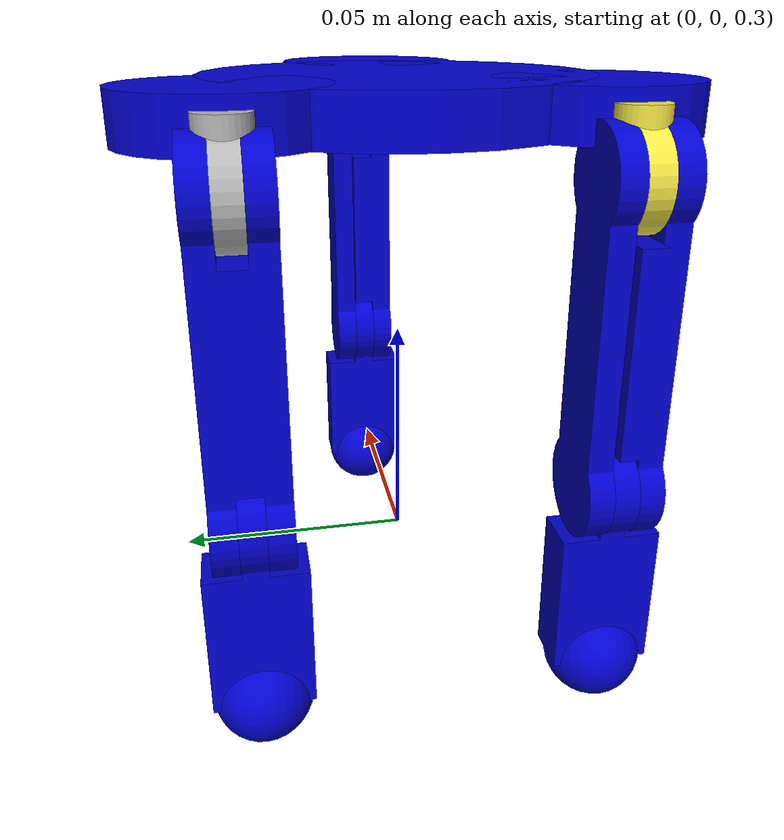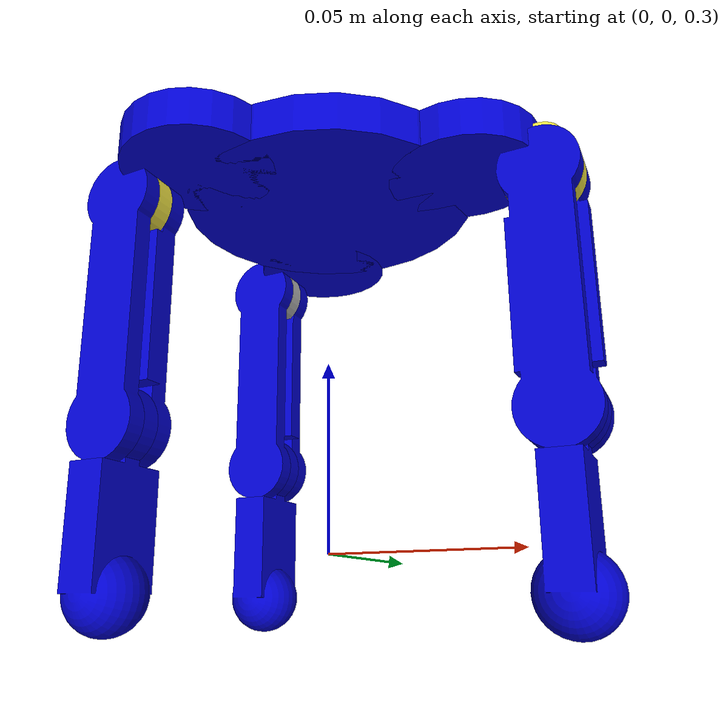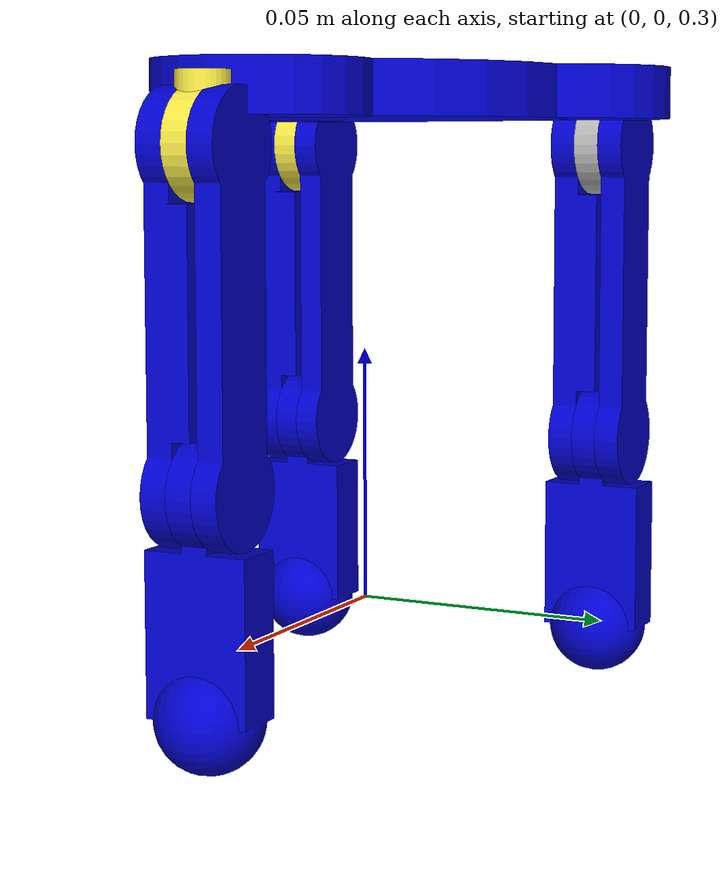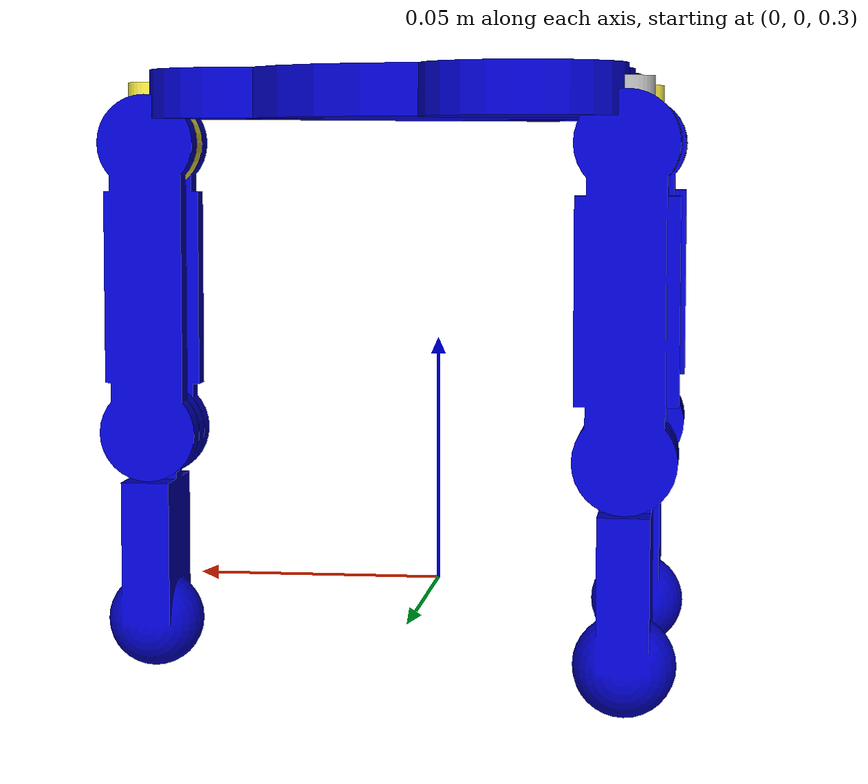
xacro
<?xml version="1.0"?>
<robot name="trimod" xmlns:xacro="http://www.ros.org/wiki/xacro">

  <xacro:include filename="$(find trimod_gripper)/gripper/trimod.urdf.xacro"/>

  <link name="world" />

  <trimod name="trimod" parent="world">
    <origin rpy="${M_PI} 0 0" xyz="0 0 0.4"/>
  </trimod>

</robot>

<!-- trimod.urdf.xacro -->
<robot xmlns:xacro="http://www.ros.org/wiki/xacro">

  <xacro:include filename="$(find trimod_gripper)/gripper/utils.urdf.xacro"/>
  <xacro:include filename="$(find trimod_gripper)/gripper/finger.urdf.xacro"/>

  <xacro:property name="gripper_r" value="${0.02}"/>
  <xacro:property name="gripper_d" value="${gripper_r*1.4641}"/>
  <xacro:property name="gripper_rds" value="${gripper_r + gripper_d*0.5}"/>
  <xacro:property name="gripper_a" value="${0.5774*(gripper_d*0.5+gripper_r)}"/>
  <xacro:property name="gripper_b" value="${(gripper_d*0.5+gripper_r)/0.8660}"/>

  <macro name="trimod" params="name parent *origin">

    <link name="${name}_base">
      <visual>
        <origin rpy="0 0 0" xyz="0 0 0"/>
        <geometry>
          <cylinder length="0.01" radius="0.04"/>
        </geometry>
        <material name="blue">
          <color rgba="0 0 .8 1"/>
        </material>
      </visual>
      <collision>
        <origin rpy="0 0 0" xyz="0 0 0"/>
        <geometry>
          <cylinder length="0.01" radius="0.04"/>
        </geometry>
      </collision>
      <inertial>
        <origin rpy="${M_PI/2} 0 0" xyz="0 0 0"/>
        <mass value="1000000"/>
        <cylinder_inertia length="0.01" mass="1000000" radius="0.04"/>
      </inertial>
    </link>

    <joint name="${name}_joint_base" type="fixed">
      <parent link="${parent}"/>
      <child link="${name}_base"/>
      <insert_block name="origin"/>
    </joint>

    <finger name="${name}_finger_left" parent="${name}_base">
      <origin rpy="0 0 ${M_PI}" xyz="${-gripper_a} ${gripper_rds} 0.0"/>
    </finger>

    <finger name="${name}_finger_right" parent="${name}_base">
      <origin rpy="0 0 ${M_PI}" xyz="${-gripper_a} ${-gripper_rds} 0.0"/>
    </finger>

    <finger name="${name}_finger_center" parent="${name}_base">
      <origin rpy="0 0 0" xyz="${gripper_b} 0 0.0"/>
    </finger>

  </macro>

  <gazebo>
    <plugin filename="libgazebo_ros_control.so" name="gazebo_ros_control">
      <robotNamespace>/trimod</robotNamespace>
    </plugin>
  </gazebo>

</robot>

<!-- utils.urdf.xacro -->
<robot  xmlns:xacro="http://www.ros.org/wiki/xacro">

  <xacro:property name="M_PI" value="3.1415926535897931"/>

  <xacro:macro name="cuboid_inertia" params="width height length mass">
    <inertia ixx="${mass * (height * height + length * length) / 12}"
             iyy="${mass * (width * width + length * length) / 12}"
             izz="${mass * (width * width + height * height) / 12}"
             ixy="0" iyz="0" ixz="0"/>
  </xacro:macro>

  <!-- length is along the y-axis! -->
  <xacro:macro name="cylinder_inertia" params="radius length mass">
    <inertia ixx="${mass * (3 * radius * radius + length * length) / 12}"
             iyy="${mass * radius* radius / 2}"
             izz="${mass * (3 * radius * radius + length * length) / 12}"
             ixy="0" iyz="0" ixz="0"/>
  </xacro:macro>

  <xacro:macro name="box_inertia" params="m x:=${x} y z">
    <inertia ixx="${m*(y*y+z*z)/12}" ixy="0" ixz="0" iyy="${m*(x*x+z*z)/12}" iyz="0" izz="${m*(x*x+z*z)/12}"/>
  </xacro:macro>

  <xacro:macro name="collision_sphere" params="radius xyz rpy">
    <collision>
      <origin rpy="${rpy}" xyz="${xyz}"/>
      <geometry>
        <sphere radius="${radius}"/>
      </geometry>
      <contact_coefficients mu="100000000.0" mu2="100000000.0" kp="100000.0" kd="100000.0" />
    </collision>
  </xacro:macro>

  <material name="pino">
     <color rgba="${158/255} ${22/255} ${22/255} 1.0"/>
  </material>

  <material name="gred">
     <color rgba="${0/255} ${175/255} ${175/255} 1.0"/>
  </material>
</robot>

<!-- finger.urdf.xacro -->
<robot xmlns:xacro="http://www.ros.org/wiki/xacro">

  <xacro:property name="scale" value="0.1"/>
  <xacro:property name="fingerDepth" value="0.2"/>
  <xacro:property name="link0r" value="0.2"/>
  <xacro:property name="link0h" value="0.1"/>
  <xacro:property name="link1a" value="0.6"/>
  <xacro:property name="link2a" value="0.4"/>
  <xacro:property name="effort" value="10"/>
  <xacro:property name="interface" value="PositionJointInterface"/>

  <macro name="finger" params="name parent *origin">

    <link name="${name}_base">
      <visual>
        <origin rpy="0 0 0" xyz="0 0 0"/>
        <geometry>
          <cylinder length="0.01" radius="0.02"/>
        </geometry>
        <material name="blue">
          <color rgba="0 0 .8 1"/>
        </material>
      </visual>
      <collision>
        <origin rpy="0 0 0" xyz="0 0 0"/>
        <geometry>
          <cylinder length="0.01" radius="0.04"/>
        </geometry>
      </collision>
      <inertial>
        <origin rpy="0 0 0" xyz="0 0 0"/>
        <mass value="1"/>
        <box_inertia m="1" x="0.01" y="0.01" z="0.01"/>
      </inertial>
    </link>

    <link name="${name}_link0">
      <visual>
        <origin rpy="0 0 0" xyz="0 0 0"/>
        <geometry>
          <mesh filename="package://trimod_gripper/meshes/Link0.stl" scale="${scale} ${scale} ${scale}"/>
        </geometry>
      </visual>

      <collision>
        <origin rpy="0 0 0" xyz="0 0 0"/>
        <geometry>
          <mesh filename="package://trimod_gripper/meshes/Link0_convex.stl" scale="${scale} ${scale} ${scale}"/>
        </geometry>
        <contact_coefficients mu="10.0" kp="100000.0" kd="100000.0" />
      </collision>

      <inertial>
        <origin rpy="0 0 0" xyz="${fingerDepth*scale*0.5} 0.000000 ${fingerDepth*scale*0.5}"/>
        <mass value="1000"/>
        <box_inertia m="1000" x="${link0r*scale}" y="${fingerDepth*scale}" z="${0.2*scale}"/>
      </inertial>
    </link>

    <link name="${name}_link1">
      <visual>
        <origin rpy="0 0 0" xyz="0 0 0"/>
        <geometry>
          <mesh filename="package://trimod_gripper/meshes/Link1.stl" scale="${scale} ${scale} ${scale}"/>
        </geometry>
        <material name="blue">
          <color rgba="0 0 .8 1"/>
        </material>

      </visual>

      <collision>
        <origin rpy="0 0 0" xyz="0 0 0"/>
        <geometry>
          <mesh filename="package://trimod_gripper/meshes/Link1_convex.stl" scale="${scale} ${scale} ${scale}"/>
        </geometry>
        <contact_coefficients mu="10.0" kp="100000.0" kd="100000.0" />
      </collision>

      <inertial>
        <origin rpy="0 0 0" xyz="${link1a*scale*0.5} 0.000000 0.000000"/>
        <mass value="1"/>
        <box_inertia m="1" x="${link1a*scale}" y="${fingerDepth*scale}" z="${fingerDepth*scale}"/>
      </inertial>
    </link>

    <link name="${name}_link2">
      <visual>
        <origin rpy="0 0 0" xyz="0 0 0"/>
        <geometry>
          <mesh filename="package://trimod_gripper/meshes/Link2.stl" scale="${scale} ${scale} ${scale}"/>
        </geometry>
        <material name="blue">
          <color rgba="0 0 .8 1"/>
        </material>

      </visual>

      <collision>
        <origin rpy="0 0 0" xyz="0 0 0"/>
        <geometry>
          <mesh filename="package://trimod_gripper/meshes/Link2_convex.stl" scale="${scale} ${scale} ${scale}"/>
        </geometry>
        <contact_coefficients mu="10.0" kp="100000.0" kd="100000.0" />
      </collision>

      <inertial>
        <origin rpy="0 0 0" xyz="${link2a*scale*0.5} 0.000000 0.000000"/>
        <mass value="10"/>
        <box_inertia m="10" x="${link2a*scale}" y="${fingerDepth*scale}" z="${fingerDepth*scale}"/>
      </inertial>
    </link>

      <gazebo reference="${name}_link2">
          <mu1>10.0</mu1>
          <mu2>10.0</mu2>
          <kp>10000000.0</kp>
          <kd>10000000.0</kd>
      </gazebo>

<!-- JOINTS -->

    <joint name="${name}_joint_base" type="fixed">
      <parent link="${parent}"/>
      <child link="${name}_base"/>
      <insert_block name="origin"/>
    </joint>

    <joint name="${name}_joint_palm" type="revolute">
      <parent link="${name}_base"/>
      <child link="${name}_link0"/>
      <origin rpy="0 0 0" xyz="0 0 0"/>
      <axis xyz="0 0 1"/>
      <limit effort="${effort}" lower="${-90 * M_PI / 180}" upper="${90 * M_PI / 180}" velocity="100"/>
      <dynamics damping="1.0" friction="10.0"/>
    </joint>

    <joint name="${name}_joint_proximal" type="revolute">
      <parent link="${name}_link0"/>
      <child link="${name}_link1"/>
      <origin rpy="${pi/2} -${pi/2} 0" xyz="${link0r*scale} 0 ${link0h*scale}"/>
      <axis xyz="0 0 1"/>
      <limit effort="${effort}" lower="${-90 * M_PI / 180}" upper="${50 * M_PI / 180}" velocity="100"/>
      <dynamics damping="1.0" friction="10.0"/>
    </joint>

    <joint name="${name}_joint_distal" type="revolute">
      <parent link="${name}_link1"/>
      <child link="${name}_link2"/>
      <origin rpy="0 0 0" xyz="${link1a*scale} 0 0"/>
      <axis xyz="0 0 1"/>
      <limit effort="${effort}" lower="${-90 * M_PI / 180}" upper="${90 * M_PI / 180}" velocity="100"/>
      <dynamics damping="1.0" friction="10.0"/>
    </joint>

<!-- TRANSMISSIONS -->
    <transmission name="${name}_transmission_joint_palm">
      <type>transmission_interface/SimpleTransmission</type>
      <joint name="${name}_joint_palm">

        <hardwareInterface>${interface}</hardwareInterface>
      </joint>
      <actuator name="${name}_motor_joint_palm">

        <hardwareInterface>${interface}</hardwareInterface>
        <mechanicalReduction>1</mechanicalReduction>
      </actuator>
    </transmission>

    <transmission name="${name}_transmission_joint_proximal">
      <type>transmission_interface/SimpleTransmission</type>
      <joint name="${name}_joint_proximal">

        <hardwareInterface>${interface}</hardwareInterface>
      </joint>
      <actuator name="${name}_motor_joint_proximal">

        <hardwareInterface>${interface}</hardwareInterface>
        <mechanicalReduction>1</mechanicalReduction>
      </actuator>
    </transmission>

    <transmission name="${name}_transmission_joint_distal">
      <type>transmission_interface/SimpleTransmission</type>
      <joint name="${name}_joint_distal">

        <hardwareInterface>${interface}</hardwareInterface>
      </joint>
      <actuator name="${name}_motor_joint_distal">

        <hardwareInterface>${interface}</hardwareInterface>
        <mechanicalReduction>1</mechanicalReduction>
      </actuator>
    </transmission>

  </macro>

</robot>
